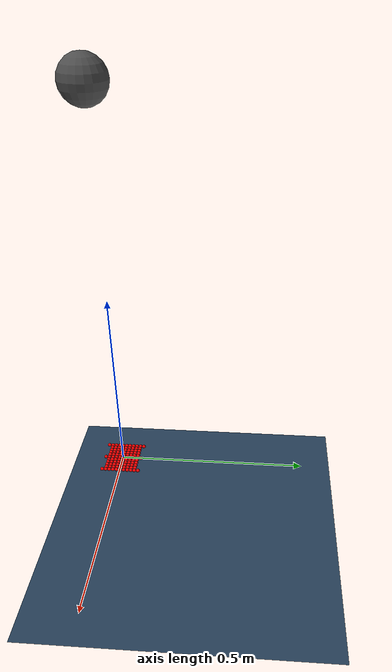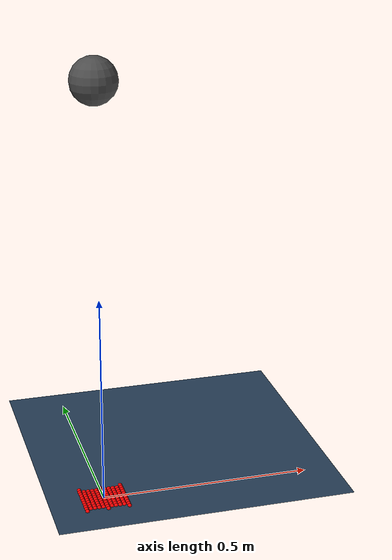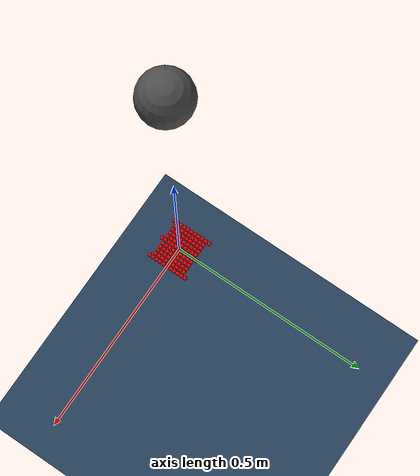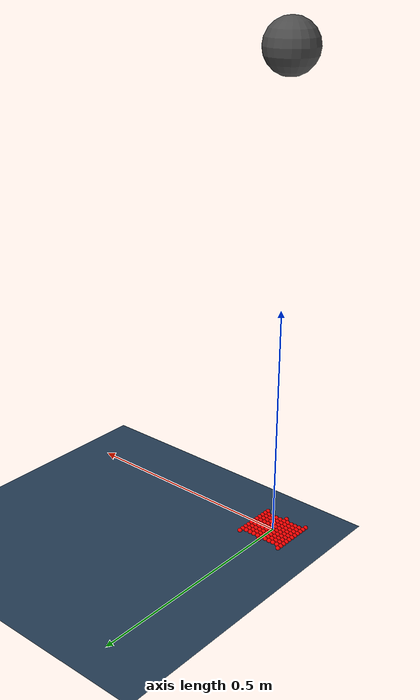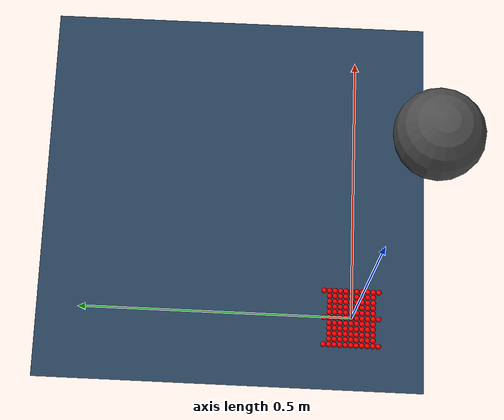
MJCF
<mujoco model="iron_ball_drop">
    <!-- 铁球自由落体冲击力分析模型 -->

    <!-- 编译器设置 -->
    <compiler angle="radian" coordinate="local" discardvisual="false" autolimits="true"/>
    <!-- angle="radian": 角度单位为弧度 -->
    <!-- coordinate="local": 使用局部坐标系 -->
    <!-- discardvisual="false": 保留视觉元素 -->
    <!-- autolimits="true": 自动设置关节限制 -->

    <!-- 仿真选项 -->
    <option gravity="0 0 -9.81" integrator="RK4" timestep="0.002" tolerance="1e-12" cone="elliptic"/>
    <!-- gravity="0 0 -9.81": 重力加速度，z轴向下9.81 m/s² -->
    <!-- integrator="RK4": 使用四阶龙格库塔积分器 -->
    <!-- timestep="0.002": 仿真时间步长，2毫秒 -->
    <!-- tolerance="1e-12": 数值求解容差，确保高精度计算 -->
    <!-- cone="elliptic": 使用椭圆锥接触模型，提供更精确的接触力计算 -->

    <!-- 可视化设置 -->
    <visual>
        <!-- 接触点可视化设置 -->
        <rgba contactpoint="1.0 0.0 0.0 1.0" contactforce="0.8 0.36 0.36 1"
               contactfriction="0.8 0.36 0.36 1" contacttorque="0.8 0.36 0.36 1"
               contactgap="0.8 0.36 0.36 1" haze="0.15 0.25 0.35 1"/>
        <!-- contactpoint: 接触点颜色，红色 -->
        <!-- contactforce: 接触力颜色，浅红色 -->
        <!-- contactfriction: 摩擦力颜色，浅红色 -->
        <!-- contacttorque: 接触力矩颜色，浅红色 -->
        <!-- contactgap: 接触间隙颜色，浅红色 -->
        <!-- haze: 雾化效果颜色，蓝灰色 -->

        <scale contactwidth="0.003" contactheight="0.005" forcewidth="0.02"/>
        <!-- contactwidth: 接触点宽度，3毫米 -->
        <!-- contactheight: 接触点高度，5毫米 -->
        <!-- forcewidth: 力向量宽度，2厘米 -->

        <!-- 光照和渲染设置 -->
        <headlight diffuse="0.6 0.6 0.6" ambient="0.3 0.3 0.3" specular="0 0 0"/>
        <!-- diffuse: 漫反射光强度 -->
        <!-- ambient: 环境光强度 -->
        <!-- specular: 镜面反射光强度 -->

        <global azimuth="150" elevation="-20"/>
        <!-- azimuth: 方位角，150度 -->
        <!-- elevation: 仰角，-20度（向下看） -->

        <quality shadowsize="0"/>
        <!-- shadowsize: 阴影大小，0表示无阴影 -->
    </visual>

    <!-- 资源定义 -->
    <asset>
        <!-- 材料定义 -->
        <material name="iron" rgba="0.4 0.4 0.4 1" specular="0.3" reflectance="0.1"/>
        <!-- name="iron": 铁材料名称 -->
        <!-- rgba: 颜色，灰色，不透明度1.0 -->
        <!-- specular: 镜面反射系数，0.3 -->
        <!-- reflectance: 反射率，0.1 -->

        <!-- 地面纹理 -->
        <texture type="2d" name="groundplane" builtin="checker" mark="edge"
                 rgb1="0.2 0.3 0.4" rgb2="0.1 0.2 0.3" markrgb="0.8 0.8 0.8"
                 width="1000" height="1000"/>
        <!-- type="2d": 2D纹理类型 -->
        <!-- name="groundplane": 纹理名称 -->
        <!-- builtin="checker": 内置棋盘格纹理 -->
        <!-- mark="edge": 边缘标记 -->
        <!-- rgb1/rgb2: 棋盘格两种颜色，蓝灰色系 -->
        <!-- markrgb: 边缘标记颜色，白色 -->
        <!-- width/height: 纹理尺寸，1000x1000像素 -->

        <material name="groundplane" texture="groundplane" texuniform="true"
                  texrepeat="5 5" reflectance="0"/>
        <!-- name="groundplane": 地面平面材料名称 -->
        <!-- texture: 使用的纹理名称 -->
        <!-- texuniform="true": 纹理均匀分布 -->
        <!-- texrepeat="5 5": 纹理重复次数，5x5 -->
        <!-- reflectance="0": 无反射 -->
    </asset>

    <!-- 几何体和关节的默认设置 -->
    <default>
        <!-- 铁质物体的默认设置 -->
        <default class="iron_object">
            <geom density="7860" friction="0.5 0.005 0.0001" condim="6"
                   solimp="0.98 0.995" solref="0.00005 0.2" material="iron"/>
            <!-- density="7860": 密度，铁的标准密度7860 kg/m³ -->
            <!-- friction="0.5 0.005 0.0001": 摩擦系数，滑动/滚动/旋转摩擦 -->
            <!-- condim="6": 接触维度，6表示完整3D接触, 3表示平面接触, 4表示圆柱接触 -->

            <!-- solimp 参数详解 (d0, dwidth, width, midpoint, power) -->
            <!-- d0: 当 r = 0（无违反）时的阻抗值 -->
            <!-- dwidth: 当 r = width 时的阻抗值 -->
            <!-- width: 从 r = 0 到 r = width 是阻抗函数变化的范围，超过这个范围 d(r) 保持不变 -->
            <!-- midpoint: sigmoid 曲线的拐点（在 width 范围内），值域为 [0, 1], 值越大越凹 -->
            <!-- power: 幂次，控制接触力曲线的形状，必须 ≥1，1 表示线性变化，越大越陡峭 -->
            <!-- solimp 自动补全 = (0.9, 0.95, 0.001, 0.5, 2) -->
            <!-- 参考文档: https://mujoco.readthedocs.io/en/stable/modeling.html#csolver -->

            <!-- solref 参数详解 -->
            <!-- solref 有两种格式，基于数值的正负号： -->
            <!-- 1. 正值格式 (timeconstant, dampratio): -->
            <!--    - timeconst (s): 时间常数，表示“约束需要多快消除违反” -->
            <!--    - dampratio: 阻尼比，表示响应是振荡的（<1）、临界的 (=1)、或过阻尼的 (>1) -->
            <!--    示例: solref="0.02 1" -->
            <!--    表示在大约 0.02 秒内消除约束冲突，具有临界阻尼（无振荡） -->
            <!-- 2. 负值格式 (-stiffness, -damping): -->
            <!--    - stiffness (N/m): 约束的刚度 -->
            <!--    - damping (Ns/m): 约束的阻尼值 -->
            <!--    示例: solref="-10000 -20" -->
            <!--    表示刚度为10000 N/m，阻尼为20 Ns/m的刚性约束 -->
            <!--    数值越大，约束越刚性，弹性越小. 如果你设 -damping = 0，就会变成完全弹性碰撞（无能量损失），适合反弹模拟。-->

            <!-- solref="0.0005 1": 中等刚度接触参数，产生适中的冲击时间 -->
            <!-- material="iron": 使用铁材料 -->
        </default>

        <!-- 地面物体的默认设置 -->
        <default class="ground_object">
            <geom density="7860" friction="0.8 0.005 0.0001" condim="6"
                   solimp="0.98 0.995" solref="0.00005 0.3" material="iron"/>
            <!-- density="7860": 密度，铁的标准密度7860 kg/m³ -->
            <!-- friction="0.5 0.005 0.0001": 摩擦系数，滑动/滚动/旋转摩擦 -->
            <!-- condim="6": 接触维度，6表示完整3D接触 -->
            <!-- solimp="0.9 0.95": 求解器参数，影响接触力计算精度 -->
            <!-- solref="0.0005 1": 中等刚度接触参数，产生适中的冲击时间 -->
            <!-- material="iron": 使用铁材料 -->
        </default>

    </default>

    <!-- 世界体 - 主仿真环境 -->
    <worldbody>
        <!-- 光照 -->
        <light name="spotlight" pos="0 0 5" dir="0 0 -1" directional="true"/>
        <!-- name="spotlight": 聚光灯名称 -->
        <!-- pos="0 0 5": 光源位置，在z轴上方5米 -->
        <!-- dir="0 0 -1": 光照方向，向下 -->
        <!-- directional="true": 方向性光源 -->

        <!-- 地面平面 -->
        <geom name="ground" type="plane" size="1 1 0.3" material="groundplane"
               class="ground_object"/>
        <!-- name="ground": 地面几何体名称 -->
        <!-- type="plane": 平面几何体类型 -->
        <!-- size="1 1 0.3": 平面尺寸，1x1米，厚度0.1米 -->
        <!-- material="groundplane": 使用地面平面材料 -->
        <!-- class="ground_object": 使用地面物体类 -->

        <!-- 地面传感器阵列 - 10cmx10cm区域，密度1cm -->
        <!-- 覆盖范围：-0.05到0.05米，总共11x11=121个传感器 -->
        <site name="ground_contact_center" pos="0 0 0" size="0.005" rgba="1 0 0 1"/>
        <site name="ground_contact_n1" pos="0 0.01 0" size="0.005" rgba="1 0 0 1"/>
        <site name="ground_contact_n2" pos="0 0.02 0" size="0.005" rgba="1 0 0 1"/>
        <site name="ground_contact_n3" pos="0 0.03 0" size="0.005" rgba="1 0 0 1"/>
        <site name="ground_contact_n4" pos="0 0.04 0" size="0.005" rgba="1 0 0 1"/>
        <site name="ground_contact_n5" pos="0 0.05 0" size="0.005" rgba="1 0 0 1"/>
        <site name="ground_contact_s1" pos="0 -0.01 0" size="0.005" rgba="1 0 0 1"/>
        <site name="ground_contact_s2" pos="0 -0.02 0" size="0.005" rgba="1 0 0 1"/>
        <site name="ground_contact_s3" pos="0 -0.03 0" size="0.005" rgba="1 0 0 1"/>
        <site name="ground_contact_s4" pos="0 -0.04 0" size="0.005" rgba="1 0 0 1"/>
        <site name="ground_contact_s5" pos="0 -0.05 0" size="0.005" rgba="1 0 0 1"/>
        <site name="ground_contact_e1" pos="0.01 0 0" size="0.005" rgba="1 0 0 1"/>
        <site name="ground_contact_e2" pos="0.02 0 0" size="0.005" rgba="1 0 0 1"/>
        <site name="ground_contact_e3" pos="0.03 0 0" size="0.005" rgba="1 0 0 1"/>
        <site name="ground_contact_e4" pos="0.04 0 0" size="0.005" rgba="1 0 0 1"/>
        <site name="ground_contact_e5" pos="0.05 0 0" size="0.005" rgba="1 0 0 1"/>
        <site name="ground_contact_w1" pos="-0.01 0 0" size="0.005" rgba="1 0 0 1"/>
        <site name="ground_contact_w2" pos="-0.02 0 0" size="0.005" rgba="1 0 0 1"/>
        <site name="ground_contact_w3" pos="-0.03 0 0" size="0.005" rgba="1 0 0 1"/>
        <site name="ground_contact_w4" pos="-0.04 0 0" size="0.005" rgba="1 0 0 1"/>
        <site name="ground_contact_w5" pos="-0.05 0 0" size="0.005" rgba="1 0 0 1"/>
        <!-- 对角线传感器 -->
        <site name="ground_contact_ne1" pos="0.01 0.01 0" size="0.005" rgba="1 0 0 1"/>
        <site name="ground_contact_ne2" pos="0.02 0.02 0" size="0.005" rgba="1 0 0 1"/>
        <site name="ground_contact_ne3" pos="0.03 0.03 0" size="0.005" rgba="1 0 0 1"/>
        <site name="ground_contact_ne4" pos="0.04 0.04 0" size="0.005" rgba="1 0 0 1"/>
        <site name="ground_contact_ne5" pos="0.05 0.05 0" size="0.005" rgba="1 0 0 1"/>
        <site name="ground_contact_nw1" pos="-0.01 0.01 0" size="0.005" rgba="1 0 0 1"/>
        <site name="ground_contact_nw2" pos="-0.02 0.02 0" size="0.005" rgba="1 0 0 1"/>
        <site name="ground_contact_nw3" pos="-0.03 0.03 0" size="0.005" rgba="1 0 0 1"/>
        <site name="ground_contact_nw4" pos="-0.04 0.04 0" size="0.005" rgba="1 0 0 1"/>
        <site name="ground_contact_nw5" pos="-0.05 0.05 0" size="0.005" rgba="1 0 0 1"/>
        <site name="ground_contact_se1" pos="0.01 -0.01 0" size="0.005" rgba="1 0 0 1"/>
        <site name="ground_contact_se2" pos="0.02 -0.02 0" size="0.005" rgba="1 0 0 1"/>
        <site name="ground_contact_se3" pos="0.03 -0.03 0" size="0.005" rgba="1 0 0 1"/>
        <site name="ground_contact_se4" pos="0.04 -0.04 0" size="0.005" rgba="1 0 0 1"/>
        <site name="ground_contact_se5" pos="0.05 -0.05 0" size="0.005" rgba="1 0 0 1"/>
        <site name="ground_contact_sw1" pos="-0.01 -0.01 0" size="0.005" rgba="1 0 0 1"/>
        <site name="ground_contact_sw2" pos="-0.02 -0.02 0" size="0.005" rgba="1 0 0 1"/>
        <site name="ground_contact_sw3" pos="-0.03 -0.03 0" size="0.005" rgba="1 0 0 1"/>
        <site name="ground_contact_sw4" pos="-0.04 -0.04 0" size="0.005" rgba="1 0 0 1"/>
        <site name="ground_contact_sw5" pos="-0.05 -0.05 0" size="0.005" rgba="1 0 0 1"/>
        <!-- 填充其他位置的传感器 -->
        <site name="ground_contact_01" pos="0.01 0.02 0" size="0.005" rgba="1 0 0 1"/>
        <site name="ground_contact_02" pos="0.01 0.03 0" size="0.005" rgba="1 0 0 1"/>
        <site name="ground_contact_03" pos="0.01 0.04 0" size="0.005" rgba="1 0 0 1"/>
        <site name="ground_contact_04" pos="0.01 -0.02 0" size="0.005" rgba="1 0 0 1"/>
        <site name="ground_contact_05" pos="0.01 -0.03 0" size="0.005" rgba="1 0 0 1"/>
        <site name="ground_contact_06" pos="0.01 -0.04 0" size="0.005" rgba="1 0 0 1"/>
        <site name="ground_contact_07" pos="0.02 0.01 0" size="0.005" rgba="1 0 0 1"/>
        <site name="ground_contact_08" pos="0.02 0.03 0" size="0.005" rgba="1 0 0 1"/>
        <site name="ground_contact_09" pos="0.02 0.04 0" size="0.005" rgba="1 0 0 1"/>
        <site name="ground_contact_10" pos="0.02 -0.01 0" size="0.005" rgba="1 0 0 1"/>
        <site name="ground_contact_11" pos="0.02 -0.03 0" size="0.005" rgba="1 0 0 1"/>
        <site name="ground_contact_12" pos="0.02 -0.04 0" size="0.005" rgba="1 0 0 1"/>
        <site name="ground_contact_13" pos="0.03 0.01 0" size="0.005" rgba="1 0 0 1"/>
        <site name="ground_contact_14" pos="0.03 0.02 0" size="0.005" rgba="1 0 0 1"/>
        <site name="ground_contact_15" pos="0.03 0.04 0" size="0.005" rgba="1 0 0 1"/>
        <site name="ground_contact_16" pos="0.03 -0.01 0" size="0.005" rgba="1 0 0 1"/>
        <site name="ground_contact_17" pos="0.03 -0.02 0" size="0.005" rgba="1 0 0 1"/>
        <site name="ground_contact_18" pos="0.03 -0.04 0" size="0.005" rgba="1 0 0 1"/>
        <site name="ground_contact_19" pos="0.04 0.01 0" size="0.005" rgba="1 0 0 1"/>
        <site name="ground_contact_20" pos="0.04 0.02 0" size="0.005" rgba="1 0 0 1"/>
        <site name="ground_contact_21" pos="0.04 0.03 0" size="0.005" rgba="1 0 0 1"/>
        <site name="ground_contact_22" pos="0.04 -0.01 0" size="0.005" rgba="1 0 0 1"/>
        <site name="ground_contact_23" pos="0.04 -0.02 0" size="0.005" rgba="1 0 0 1"/>
        <site name="ground_contact_24" pos="0.04 -0.03 0" size="0.005" rgba="1 0 0 1"/>
        <site name="ground_contact_25" pos="0.05 0.01 0" size="0.005" rgba="1 0 0 1"/>
        <site name="ground_contact_26" pos="0.05 0.02 0" size="0.005" rgba="1 0 0 1"/>
        <site name="ground_contact_27" pos="0.05 0.03 0" size="0.005" rgba="1 0 0 1"/>
        <site name="ground_contact_28" pos="0.05 0.04 0" size="0.005" rgba="1 0 0 1"/>
        <site name="ground_contact_29" pos="0.05 -0.01 0" size="0.005" rgba="1 0 0 1"/>
        <site name="ground_contact_30" pos="0.05 -0.02 0" size="0.005" rgba="1 0 0 1"/>
        <site name="ground_contact_31" pos="0.05 -0.03 0" size="0.005" rgba="1 0 0 1"/>
        <site name="ground_contact_32" pos="0.05 -0.04 0" size="0.005" rgba="1 0 0 1"/>
        <site name="ground_contact_33" pos="-0.01 0.02 0" size="0.005" rgba="1 0 0 1"/>
        <site name="ground_contact_34" pos="-0.01 0.03 0" size="0.005" rgba="1 0 0 1"/>
        <site name="ground_contact_35" pos="-0.01 0.04 0" size="0.005" rgba="1 0 0 1"/>
        <site name="ground_contact_36" pos="-0.01 -0.02 0" size="0.005" rgba="1 0 0 1"/>
        <site name="ground_contact_37" pos="-0.01 -0.03 0" size="0.005" rgba="1 0 0 1"/>
        <site name="ground_contact_38" pos="-0.01 -0.04 0" size="0.005" rgba="1 0 0 1"/>
        <site name="ground_contact_39" pos="-0.02 0.01 0" size="0.005" rgba="1 0 0 1"/>
        <site name="ground_contact_40" pos="-0.02 0.03 0" size="0.005" rgba="1 0 0 1"/>
        <site name="ground_contact_41" pos="-0.02 0.04 0" size="0.005" rgba="1 0 0 1"/>
        <site name="ground_contact_42" pos="-0.02 -0.01 0" size="0.005" rgba="1 0 0 1"/>
        <site name="ground_contact_43" pos="-0.02 -0.03 0" size="0.005" rgba="1 0 0 1"/>
        <site name="ground_contact_44" pos="-0.02 -0.04 0" size="0.005" rgba="1 0 0 1"/>
        <site name="ground_contact_45" pos="-0.03 0.01 0" size="0.005" rgba="1 0 0 1"/>
        <site name="ground_contact_46" pos="-0.03 0.02 0" size="0.005" rgba="1 0 0 1"/>
        <site name="ground_contact_47" pos="-0.03 0.04 0" size="0.005" rgba="1 0 0 1"/>
        <site name="ground_contact_48" pos="-0.03 -0.01 0" size="0.005" rgba="1 0 0 1"/>
        <site name="ground_contact_49" pos="-0.03 -0.02 0" size="0.005" rgba="1 0 0 1"/>
        <site name="ground_contact_50" pos="-0.03 -0.04 0" size="0.005" rgba="1 0 0 1"/>
        <site name="ground_contact_51" pos="-0.04 0.01 0" size="0.005" rgba="1 0 0 1"/>
        <site name="ground_contact_52" pos="-0.04 0.02 0" size="0.005" rgba="1 0 0 1"/>
        <site name="ground_contact_53" pos="-0.04 0.03 0" size="0.005" rgba="1 0 0 1"/>
        <site name="ground_contact_54" pos="-0.04 -0.01 0" size="0.005" rgba="1 0 0 1"/>
        <site name="ground_contact_55" pos="-0.04 -0.02 0" size="0.005" rgba="1 0 0 1"/>
        <site name="ground_contact_56" pos="-0.04 -0.03 0" size="0.005" rgba="1 0 0 1"/>
        <site name="ground_contact_57" pos="-0.05 0.01 0" size="0.005" rgba="1 0 0 1"/>
        <site name="ground_contact_58" pos="-0.05 0.02 0" size="0.005" rgba="1 0 0 1"/>
        <site name="ground_contact_59" pos="-0.05 0.03 0" size="0.005" rgba="1 0 0 1"/>
        <site name="ground_contact_60" pos="-0.05 0.04 0" size="0.005" rgba="1 0 0 1"/>
        <site name="ground_contact_61" pos="-0.05 -0.01 0" size="0.005" rgba="1 0 0 1"/>
        <site name="ground_contact_62" pos="-0.05 -0.02 0" size="0.005" rgba="1 0 0 1"/>
        <site name="ground_contact_63" pos="-0.05 -0.03 0" size="0.005" rgba="1 0 0 1"/>
        <site name="ground_contact_64" pos="-0.05 -0.04 0" size="0.005" rgba="1 0 0 1"/>

        <!-- 铁球体 -->
        <!-- name="iron_ball": 铁球体名称 -->
        <!-- 0.26kg铁球: pos="0 0 1.0": 初始位置，在z轴上方0.42米 -->
        <!-- 5kg铁球: pos="0 0 1.0": 初始位置，在z轴上方1米 -->
        <body name="iron_ball" pos="0 0 1.0">

            <!-- 自由关节，允许6自由度运动 -->
            <joint type="free"/>
            <!-- type="free": 自由关节类型 -->

            <!-- 球体几何 - 铁球质量-半径对应关系 -->
            <!-- 密度：7860 kg/m³ (铁的密度) -->
            <!-- 0.26kg铁球: 半径=0.020m (2.00cm) -->
            <!-- 1kg铁球: 半径=0.0316m (3.16cm) -->
            <!-- 2kg铁球: 半径=0.0398m (3.98cm) -->
            <!-- 3kg铁球: 半径=0.0456m (4.56cm) -->
            <!-- 4kg铁球: 半径=0.0502m (5.02cm) -->
            <!-- 5kg铁球: 半径=0.0534m (5.34cm) - 当前设置 -->
            <!-- 6kg铁球: 半径=0.0575m (5.75cm) -->
            <!-- 8kg铁球: 半径=0.0632m (6.32cm) -->
            <!-- 10kg铁球: 半径=0.0680m (6.80cm) -->
            <!-- 计算公式: 半径 = (3×重量/(4×π×7860))^(1/3) -->
            <geom name="ball_geom" type="sphere" size="0.0534" class="iron_object"
                   rgba="0.3 0.3 0.3 1"/>
            <!-- name="ball_geom": 球体几何体名称 -->
            <!-- type="sphere": 球体几何体类型 -->
            <!-- size="0.0534": 球体半径，5.34厘米，对应5kg铁球 -->
            <!-- class="iron_object": 使用铁质物体类 -->
            <!-- rgba="0.3 0.3 0.3 1": 颜色，深灰色 -->

        </body>
    </worldbody>

    <!-- 接触对定义 - 中等刚度接触设置 -->
    <contact>
        <pair geom1="ground" geom2="ball_geom" solref="0.0085 1" solimp="0.7 0.95" solreffriction="0.0005 1"/>
        <!-- geom1="ground": 地面几何体 -->
        <!-- geom2="ball_geom": 球体几何体 -->
        <!-- solref="0.0005 1" solimp="0.9 0.95": 无护具参数 -->
        <!-- solref="0.0015 1" solimp="0.7 0.95": 6mm护具参数 -->
        <!-- solref="0.0034 1" solimp="0.7 0.95": 12mm护具参数 -->
        <!-- solref="0.0041 1" solimp="0.7 0.95": 18mm护具参数 -->
        <!-- solref="0.0085 1" solimp="0.7 0.95": 24mm护具参数 -->

        <!-- solreffriction="0.0005 1": 中等摩擦刚度参数，提供适当的摩擦阻尼 -->
    </contact>

    <!-- 传感器定义 -->
    <sensor>
        <!-- 地面传感器阵列 - 121个触摸传感器 -->
        <touch name="touch_center" site="ground_contact_center"/>
        <touch name="touch_n1" site="ground_contact_n1"/>
        <touch name="touch_n2" site="ground_contact_n2"/>
        <touch name="touch_n3" site="ground_contact_n3"/>
        <touch name="touch_n4" site="ground_contact_n4"/>
        <touch name="touch_n5" site="ground_contact_n5"/>
        <touch name="touch_s1" site="ground_contact_s1"/>
        <touch name="touch_s2" site="ground_contact_s2"/>
        <touch name="touch_s3" site="ground_contact_s3"/>
        <touch name="touch_s4" site="ground_contact_s4"/>
        <touch name="touch_s5" site="ground_contact_s5"/>
        <touch name="touch_e1" site="ground_contact_e1"/>
        <touch name="touch_e2" site="ground_contact_e2"/>
        <touch name="touch_e3" site="ground_contact_e3"/>
        <touch name="touch_e4" site="ground_contact_e4"/>
        <touch name="touch_e5" site="ground_contact_e5"/>
        <touch name="touch_w1" site="ground_contact_w1"/>
        <touch name="touch_w2" site="ground_contact_w2"/>
        <touch name="touch_w3" site="ground_contact_w3"/>
        <touch name="touch_w4" site="ground_contact_w4"/>
        <touch name="touch_w5" site="ground_contact_w5"/>
        <touch name="touch_ne1" site="ground_contact_ne1"/>
        <touch name="touch_ne2" site="ground_contact_ne2"/>
        <touch name="touch_ne3" site="ground_contact_ne3"/>
        <touch name="touch_ne4" site="ground_contact_ne4"/>
        <touch name="touch_ne5" site="ground_contact_ne5"/>
        <touch name="touch_nw1" site="ground_contact_nw1"/>
        <touch name="touch_nw2" site="ground_contact_nw2"/>
        <touch name="touch_nw3" site="ground_contact_nw3"/>
        <touch name="touch_nw4" site="ground_contact_nw4"/>
        <touch name="touch_nw5" site="ground_contact_nw5"/>
        <touch name="touch_se1" site="ground_contact_se1"/>
        <touch name="touch_se2" site="ground_contact_se2"/>
        <touch name="touch_se3" site="ground_contact_se3"/>
        <touch name="touch_se4" site="ground_contact_se4"/>
        <touch name="touch_se5" site="ground_contact_se5"/>
        <touch name="touch_sw1" site="ground_contact_sw1"/>
        <touch name="touch_sw2" site="ground_contact_sw2"/>
        <touch name="touch_sw3" site="ground_contact_sw3"/>
        <touch name="touch_sw4" site="ground_contact_sw4"/>
        <touch name="touch_sw5" site="ground_contact_sw5"/>
        <!-- 填充其他位置的传感器 -->
        <touch name="touch_01" site="ground_contact_01"/>
        <touch name="touch_02" site="ground_contact_02"/>
        <touch name="touch_03" site="ground_contact_03"/>
        <touch name="touch_04" site="ground_contact_04"/>
        <touch name="touch_05" site="ground_contact_05"/>
        <touch name="touch_06" site="ground_contact_06"/>
        <touch name="touch_07" site="ground_contact_07"/>
        <touch name="touch_08" site="ground_contact_08"/>
        <touch name="touch_09" site="ground_contact_09"/>
        <touch name="touch_10" site="ground_contact_10"/>
        <touch name="touch_11" site="ground_contact_11"/>
        <touch name="touch_12" site="ground_contact_12"/>
        <touch name="touch_13" site="ground_contact_13"/>
        <touch name="touch_14" site="ground_contact_14"/>
        <touch name="touch_15" site="ground_contact_15"/>
        <touch name="touch_16" site="ground_contact_16"/>
        <touch name="touch_17" site="ground_contact_17"/>
        <touch name="touch_18" site="ground_contact_18"/>
        <touch name="touch_19" site="ground_contact_19"/>
        <touch name="touch_20" site="ground_contact_20"/>
        <touch name="touch_21" site="ground_contact_21"/>
        <touch name="touch_22" site="ground_contact_22"/>
        <touch name="touch_23" site="ground_contact_23"/>
        <touch name="touch_24" site="ground_contact_24"/>
        <touch name="touch_25" site="ground_contact_25"/>
        <touch name="touch_26" site="ground_contact_26"/>
        <touch name="touch_27" site="ground_contact_27"/>
        <touch name="touch_28" site="ground_contact_28"/>
        <touch name="touch_29" site="ground_contact_29"/>
        <touch name="touch_30" site="ground_contact_30"/>
        <touch name="touch_31" site="ground_contact_31"/>
        <touch name="touch_32" site="ground_contact_32"/>
        <touch name="touch_33" site="ground_contact_33"/>
        <touch name="touch_34" site="ground_contact_34"/>
        <touch name="touch_35" site="ground_contact_35"/>
        <touch name="touch_36" site="ground_contact_36"/>
        <touch name="touch_37" site="ground_contact_37"/>
        <touch name="touch_38" site="ground_contact_38"/>
        <touch name="touch_39" site="ground_contact_39"/>
        <touch name="touch_40" site="ground_contact_40"/>
        <touch name="touch_41" site="ground_contact_41"/>
        <touch name="touch_42" site="ground_contact_42"/>
        <touch name="touch_43" site="ground_contact_43"/>
        <touch name="touch_44" site="ground_contact_44"/>
        <touch name="touch_45" site="ground_contact_45"/>
        <touch name="touch_46" site="ground_contact_46"/>
        <touch name="touch_47" site="ground_contact_47"/>
        <touch name="touch_48" site="ground_contact_48"/>
        <touch name="touch_49" site="ground_contact_49"/>
        <touch name="touch_50" site="ground_contact_50"/>
        <touch name="touch_51" site="ground_contact_51"/>
        <touch name="touch_52" site="ground_contact_52"/>
        <touch name="touch_53" site="ground_contact_53"/>
        <touch name="touch_54" site="ground_contact_54"/>
        <touch name="touch_55" site="ground_contact_55"/>
        <touch name="touch_56" site="ground_contact_56"/>
        <touch name="touch_57" site="ground_contact_57"/>
        <touch name="touch_58" site="ground_contact_58"/>
        <touch name="touch_59" site="ground_contact_59"/>
        <touch name="touch_60" site="ground_contact_60"/>
        <touch name="touch_61" site="ground_contact_61"/>
        <touch name="touch_62" site="ground_contact_62"/>
        <touch name="touch_63" site="ground_contact_63"/>
        <touch name="touch_64" site="ground_contact_64"/>
        <!-- 传感器阵列覆盖10cmx10cm区域，密度1cm -->
        <!-- 可以检测铁球在任何位置的冲击力 -->
    </sensor>

</mujoco>
